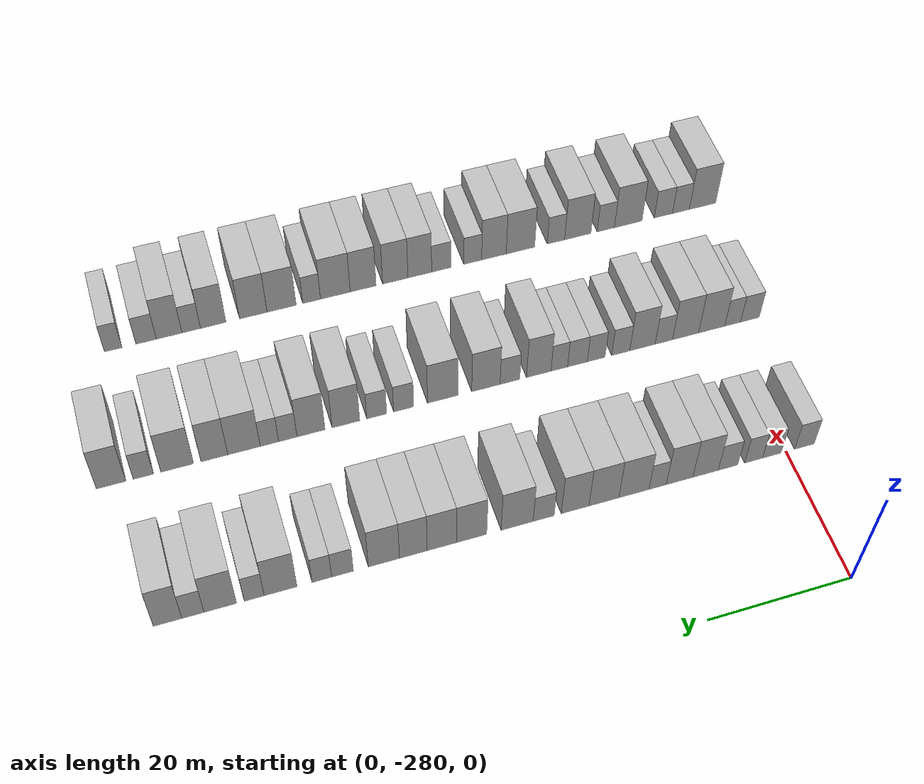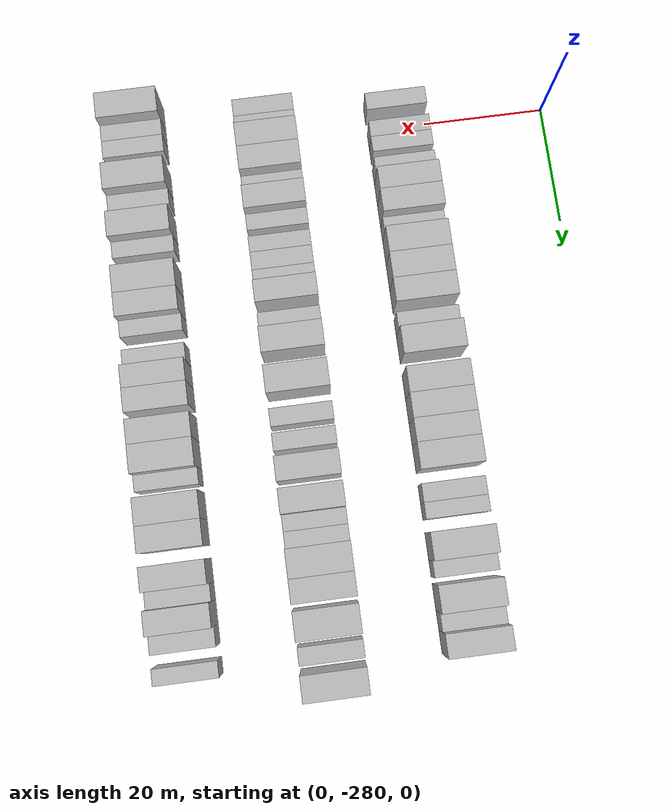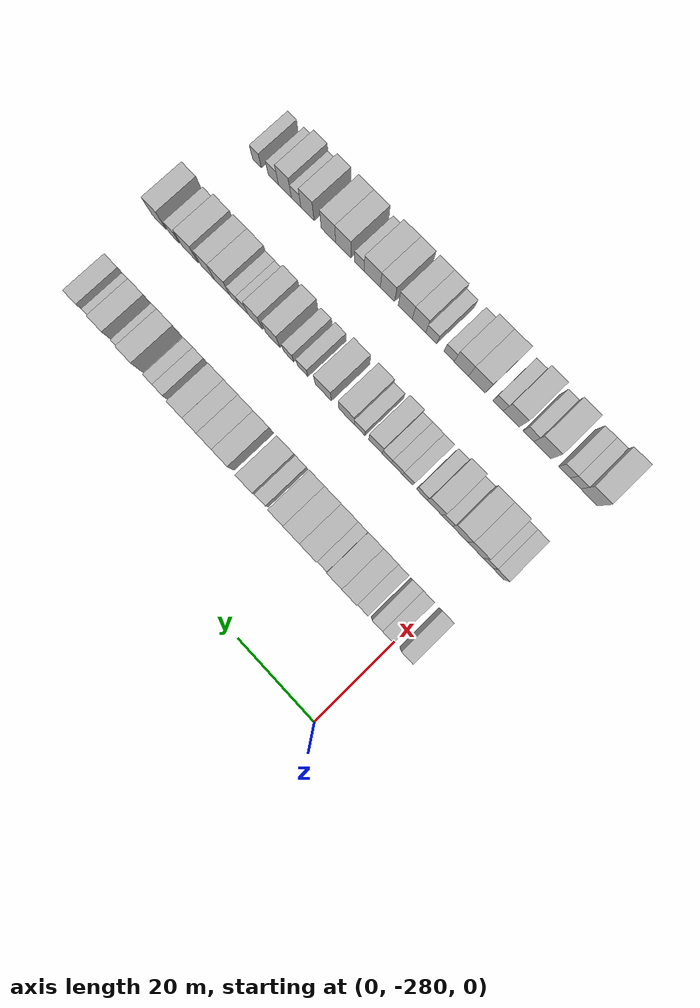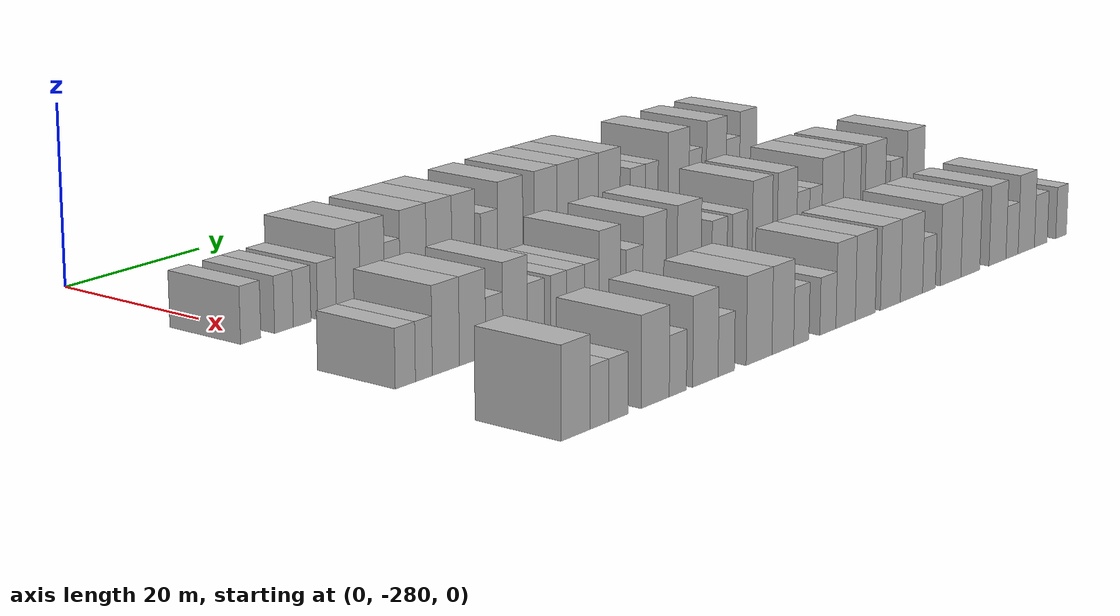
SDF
<sdf version="1.6">
 <world name="default">
  <model name="building_20">
   <static>1</static>
   <pose>25.0000 -282.6733 0 0.000000 0.000000 0.000000</pose>
   <link name="link">
    <pose>0 0 3.00 0 0 0</pose>
    <collision name="collision"><geometry><box><size>10.0000 2.9058 6.0000</size></box></geometry></collision>
    <visual name="visual">
     <cast_shadows>0</cast_shadows>
     <geometry><box><size>10.0000 2.9058 6.0000</size></box></geometry>
     <material>
      <script>
       <uri>model://HANNAS_wall/materials/scripts</uri>
       <uri>model://HANNAS_wall/materials/textures</uri>
       <name>vrc/HANNAS_wall</name>
      </script>
     </material>
    </visual>
   </link>
  </model>
  <model name="building_21">
   <static>1</static>
   <pose>25.0000 -277.8482 0 0.000000 0.000000 0.000000</pose>
   <link name="link">
    <pose>0 0 3.00 0 0 0</pose>
    <collision name="collision"><geometry><box><size>10.0000 2.7444 6.0000</size></box></geometry></collision>
    <visual name="visual">
     <cast_shadows>0</cast_shadows>
     <geometry><box><size>10.0000 2.7444 6.0000</size></box></geometry>
     <material>
      <script>
       <uri>model://HANNAS_wall/materials/scripts</uri>
       <uri>model://HANNAS_wall/materials/textures</uri>
       <name>vrc/HANNAS_wall</name>
      </script>
     </material>
    </visual>
   </link>
  </model>
  <model name="building_22">
   <static>1</static>
   <pose>25.0000 -275.1647 0 0.000000 0.000000 0.000000</pose>
   <link name="link">
    <pose>0 0 3.00 0 0 0</pose>
    <collision name="collision"><geometry><box><size>10.0000 2.6225 6.0000</size></box></geometry></collision>
    <visual name="visual">
     <cast_shadows>0</cast_shadows>
     <geometry><box><size>10.0000 2.6225 6.0000</size></box></geometry>
     <material>
      <script>
       <uri>model://HANNAS_wall/materials/scripts</uri>
       <uri>model://HANNAS_wall/materials/textures</uri>
       <name>vrc/HANNAS_wall</name>
      </script>
     </material>
    </visual>
   </link>
  </model>
  <model name="building_23">
   <static>1</static>
   <pose>25.0000 -271.4260 0 0.000000 0.000000 0.000000</pose>
   <link name="link">
    <pose>0 0 3.00 0 0 0</pose>
    <collision name="collision"><geometry><box><size>10.0000 2.8548 6.0000</size></box></geometry></collision>
    <visual name="visual">
     <cast_shadows>0</cast_shadows>
     <geometry><box><size>10.0000 2.8548 6.0000</size></box></geometry>
     <material>
      <script>
       <uri>model://HANNAS_wall/materials/scripts</uri>
       <uri>model://HANNAS_wall/materials/textures</uri>
       <name>vrc/HANNAS_wall</name>
      </script>
     </material>
    </visual>
   </link>
  </model>
  <model name="building_24">
   <static>1</static>
   <pose>25.0000 -268.1516 0 0.000000 0.000000 0.000000</pose>
   <link name="link">
    <pose>0 0 4.50 0 0 0</pose>
    <collision name="collision"><geometry><box><size>10.0000 3.6940 9.0000</size></box></geometry></collision>
    <visual name="visual">
     <cast_shadows>0</cast_shadows>
     <geometry><box><size>10.0000 3.6940 9.0000</size></box></geometry>
     <material>
      <script>
       <uri>model://HANNAS_wall/materials/scripts</uri>
       <uri>model://HANNAS_wall/materials/textures</uri>
       <name>vrc/HANNAS_wall</name>
      </script>
     </material>
    </visual>
   </link>
  </model>
  <model name="building_25">
   <static>1</static>
   <pose>25.0000 -264.3917 0 0.000000 0.000000 0.000000</pose>
   <link name="link">
    <pose>0 0 4.50 0 0 0</pose>
    <collision name="collision"><geometry><box><size>10.0000 3.8258 9.0000</size></box></geometry></collision>
    <visual name="visual">
     <cast_shadows>0</cast_shadows>
     <geometry><box><size>10.0000 3.8258 9.0000</size></box></geometry>
     <material>
      <script>
       <uri>model://HANNAS_wall/materials/scripts</uri>
       <uri>model://HANNAS_wall/materials/textures</uri>
       <name>vrc/HANNAS_wall</name>
      </script>
     </material>
    </visual>
   </link>
  </model>
  <model name="building_26">
   <static>1</static>
   <pose>25.0000 -261.2390 0 0.000000 0.000000 0.000000</pose>
   <link name="link">
    <pose>0 0 3.00 0 0 0</pose>
    <collision name="collision"><geometry><box><size>10.0000 2.4795 6.0000</size></box></geometry></collision>
    <visual name="visual">
     <cast_shadows>0</cast_shadows>
     <geometry><box><size>10.0000 2.4795 6.0000</size></box></geometry>
     <material>
      <script>
       <uri>model://HANNAS_wall/materials/scripts</uri>
       <uri>model://HANNAS_wall/materials/textures</uri>
       <name>vrc/HANNAS_wall</name>
      </script>
     </material>
    </visual>
   </link>
  </model>
  <model name="building_27">
   <static>1</static>
   <pose>25.0000 -257.8551 0 0.000000 0.000000 0.000000</pose>
   <link name="link">
    <pose>0 0 4.50 0 0 0</pose>
    <collision name="collision"><geometry><box><size>10.0000 4.2885 9.0000</size></box></geometry></collision>
    <visual name="visual">
     <cast_shadows>0</cast_shadows>
     <geometry><box><size>10.0000 4.2885 9.0000</size></box></geometry>
     <material>
      <script>
       <uri>model://HANNAS_wall/materials/scripts</uri>
       <uri>model://HANNAS_wall/materials/textures</uri>
       <name>vrc/HANNAS_wall</name>
      </script>
     </material>
    </visual>
   </link>
  </model>
  <model name="building_28">
   <static>1</static>
   <pose>25.0000 -253.5966 0 0.000000 0.000000 0.000000</pose>
   <link name="link">
    <pose>0 0 4.50 0 0 0</pose>
    <collision name="collision"><geometry><box><size>10.0000 4.2284 9.0000</size></box></geometry></collision>
    <visual name="visual">
     <cast_shadows>0</cast_shadows>
     <geometry><box><size>10.0000 4.2284 9.0000</size></box></geometry>
     <material>
      <script>
       <uri>model://HANNAS_wall/materials/scripts</uri>
       <uri>model://HANNAS_wall/materials/textures</uri>
       <name>vrc/HANNAS_wall</name>
      </script>
     </material>
    </visual>
   </link>
  </model>
  <model name="building_29">
   <static>1</static>
   <pose>25.0000 -249.5386 0 0.000000 0.000000 0.000000</pose>
   <link name="link">
    <pose>0 0 4.50 0 0 0</pose>
    <collision name="collision"><geometry><box><size>10.0000 3.8877 9.0000</size></box></geometry></collision>
    <visual name="visual">
     <cast_shadows>0</cast_shadows>
     <geometry><box><size>10.0000 3.8877 9.0000</size></box></geometry>
     <material>
      <script>
       <uri>model://HANNAS_wall/materials/scripts</uri>
       <uri>model://HANNAS_wall/materials/textures</uri>
       <name>vrc/HANNAS_wall</name>
      </script>
     </material>
    </visual>
   </link>
  </model>
  <model name="building_30">
   <static>1</static>
   <pose>25.0000 -245.1325 0 0.000000 0.000000 0.000000</pose>
   <link name="link">
    <pose>0 0 3.00 0 0 0</pose>
    <collision name="collision"><geometry><box><size>10.0000 2.9245 6.0000</size></box></geometry></collision>
    <visual name="visual">
     <cast_shadows>0</cast_shadows>
     <geometry><box><size>10.0000 2.9245 6.0000</size></box></geometry>
     <material>
      <script>
       <uri>model://HANNAS_wall/materials/scripts</uri>
       <uri>model://HANNAS_wall/materials/textures</uri>
       <name>vrc/HANNAS_wall</name>
      </script>
     </material>
    </visual>
   </link>
  </model>
  <model name="building_31">
   <static>1</static>
   <pose>25.0000 -241.4509 0 0.000000 0.000000 0.000000</pose>
   <link name="link">
    <pose>0 0 4.50 0 0 0</pose>
    <collision name="collision"><geometry><box><size>10.0000 4.4386 9.0000</size></box></geometry></collision>
    <visual name="visual">
     <cast_shadows>0</cast_shadows>
     <geometry><box><size>10.0000 4.4386 9.0000</size></box></geometry>
     <material>
      <script>
       <uri>model://HANNAS_wall/materials/scripts</uri>
       <uri>model://HANNAS_wall/materials/textures</uri>
       <name>vrc/HANNAS_wall</name>
      </script>
     </material>
    </visual>
   </link>
  </model>
  <model name="building_32">
   <static>1</static>
   <pose>25.0000 -235.1560 0 0.000000 0.000000 0.000000</pose>
   <link name="link">
    <pose>0 0 4.50 0 0 0</pose>
    <collision name="collision"><geometry><box><size>10.0000 4.1512 9.0000</size></box></geometry></collision>
    <visual name="visual">
     <cast_shadows>0</cast_shadows>
     <geometry><box><size>10.0000 4.1512 9.0000</size></box></geometry>
     <material>
      <script>
       <uri>model://HANNAS_wall/materials/scripts</uri>
       <uri>model://HANNAS_wall/materials/textures</uri>
       <name>vrc/HANNAS_wall</name>
      </script>
     </material>
    </visual>
   </link>
  </model>
  <model name="building_33">
   <static>1</static>
   <pose>25.0000 -231.0909 0 0.000000 0.000000 0.000000</pose>
   <link name="link">
    <pose>0 0 4.50 0 0 0</pose>
    <collision name="collision"><geometry><box><size>10.0000 3.9792 9.0000</size></box></geometry></collision>
    <visual name="visual">
     <cast_shadows>0</cast_shadows>
     <geometry><box><size>10.0000 3.9792 9.0000</size></box></geometry>
     <material>
      <script>
       <uri>model://HANNAS_wall/materials/scripts</uri>
       <uri>model://HANNAS_wall/materials/textures</uri>
       <name>vrc/HANNAS_wall</name>
      </script>
     </material>
    </visual>
   </link>
  </model>
  <model name="building_34">
   <static>1</static>
   <pose>25.0000 -227.2338 0 0.000000 0.000000 0.000000</pose>
   <link name="link">
    <pose>0 0 4.50 0 0 0</pose>
    <collision name="collision"><geometry><box><size>10.0000 3.7350 9.0000</size></box></geometry></collision>
    <visual name="visual">
     <cast_shadows>0</cast_shadows>
     <geometry><box><size>10.0000 3.7350 9.0000</size></box></geometry>
     <material>
      <script>
       <uri>model://HANNAS_wall/materials/scripts</uri>
       <uri>model://HANNAS_wall/materials/textures</uri>
       <name>vrc/HANNAS_wall</name>
      </script>
     </material>
    </visual>
   </link>
  </model>
  <model name="building_35">
   <static>1</static>
   <pose>25.0000 -223.2722 0 0.000000 0.000000 0.000000</pose>
   <link name="link">
    <pose>0 0 4.50 0 0 0</pose>
    <collision name="collision"><geometry><box><size>10.0000 4.1880 9.0000</size></box></geometry></collision>
    <visual name="visual">
     <cast_shadows>0</cast_shadows>
     <geometry><box><size>10.0000 4.1880 9.0000</size></box></geometry>
     <material>
      <script>
       <uri>model://HANNAS_wall/materials/scripts</uri>
       <uri>model://HANNAS_wall/materials/textures</uri>
       <name>vrc/HANNAS_wall</name>
      </script>
     </material>
    </visual>
   </link>
  </model>
  <model name="building_36">
   <static>1</static>
   <pose>25.0000 -217.7304 0 0.000000 0.000000 0.000000</pose>
   <link name="link">
    <pose>0 0 3.00 0 0 0</pose>
    <collision name="collision"><geometry><box><size>10.0000 2.8956 6.0000</size></box></geometry></collision>
    <visual name="visual">
     <cast_shadows>0</cast_shadows>
     <geometry><box><size>10.0000 2.8956 6.0000</size></box></geometry>
     <material>
      <script>
       <uri>model://HANNAS_wall/materials/scripts</uri>
       <uri>model://HANNAS_wall/materials/textures</uri>
       <name>vrc/HANNAS_wall</name>
      </script>
     </material>
    </visual>
   </link>
  </model>
  <model name="building_37">
   <static>1</static>
   <pose>25.0000 -214.9912 0 0.000000 0.000000 0.000000</pose>
   <link name="link">
    <pose>0 0 3.00 0 0 0</pose>
    <collision name="collision"><geometry><box><size>10.0000 2.5828 6.0000</size></box></geometry></collision>
    <visual name="visual">
     <cast_shadows>0</cast_shadows>
     <geometry><box><size>10.0000 2.5828 6.0000</size></box></geometry>
     <material>
      <script>
       <uri>model://HANNAS_wall/materials/scripts</uri>
       <uri>model://HANNAS_wall/materials/textures</uri>
       <name>vrc/HANNAS_wall</name>
      </script>
     </material>
    </visual>
   </link>
  </model>
  <model name="building_38">
   <static>1</static>
   <pose>25.0000 -209.5487 0 0.000000 0.000000 0.000000</pose>
   <link name="link">
    <pose>0 0 4.50 0 0 0</pose>
    <collision name="collision"><geometry><box><size>10.0000 4.3022 9.0000</size></box></geometry></collision>
    <visual name="visual">
     <cast_shadows>0</cast_shadows>
     <geometry><box><size>10.0000 4.3022 9.0000</size></box></geometry>
     <material>
      <script>
       <uri>model://HANNAS_wall/materials/scripts</uri>
       <uri>model://HANNAS_wall/materials/textures</uri>
       <name>vrc/HANNAS_wall</name>
      </script>
     </material>
    </visual>
   </link>
  </model>
  <model name="building_39">
   <static>1</static>
   <pose>25.0000 -206.1032 0 0.000000 0.000000 0.000000</pose>
   <link name="link">
    <pose>0 0 3.00 0 0 0</pose>
    <collision name="collision"><geometry><box><size>10.0000 2.5889 6.0000</size></box></geometry></collision>
    <visual name="visual">
     <cast_shadows>0</cast_shadows>
     <geometry><box><size>10.0000 2.5889 6.0000</size></box></geometry>
     <material>
      <script>
       <uri>model://HANNAS_wall/materials/scripts</uri>
       <uri>model://HANNAS_wall/materials/textures</uri>
       <name>vrc/HANNAS_wall</name>
      </script>
     </material>
    </visual>
   </link>
  </model>
  <model name="building_40">
   <static>1</static>
   <pose>25.0000 -201.7070 0 0.000000 0.000000 0.000000</pose>
   <link name="link">
    <pose>0 0 4.50 0 0 0</pose>
    <collision name="collision"><geometry><box><size>10.0000 4.2035 9.0000</size></box></geometry></collision>
    <visual name="visual">
     <cast_shadows>0</cast_shadows>
     <geometry><box><size>10.0000 4.2035 9.0000</size></box></geometry>
     <material>
      <script>
       <uri>model://HANNAS_wall/materials/scripts</uri>
       <uri>model://HANNAS_wall/materials/textures</uri>
       <name>vrc/HANNAS_wall</name>
      </script>
     </material>
    </visual>
   </link>
  </model>
  <model name="building_41">
   <static>1</static>
   <pose>25.0000 -198.1767 0 0.000000 0.000000 0.000000</pose>
   <link name="link">
    <pose>0 0 3.00 0 0 0</pose>
    <collision name="collision"><geometry><box><size>10.0000 2.8569 6.0000</size></box></geometry></collision>
    <visual name="visual">
     <cast_shadows>0</cast_shadows>
     <geometry><box><size>10.0000 2.8569 6.0000</size></box></geometry>
     <material>
      <script>
       <uri>model://HANNAS_wall/materials/scripts</uri>
       <uri>model://HANNAS_wall/materials/textures</uri>
       <name>vrc/HANNAS_wall</name>
      </script>
     </material>
    </visual>
   </link>
  </model>
  <model name="building_42">
   <static>1</static>
   <pose>25.0000 -194.9257 0 0.000000 0.000000 0.000000</pose>
   <link name="link">
    <pose>0 0 4.50 0 0 0</pose>
    <collision name="collision"><geometry><box><size>10.0000 3.6452 9.0000</size></box></geometry></collision>
    <visual name="visual">
     <cast_shadows>0</cast_shadows>
     <geometry><box><size>10.0000 3.6452 9.0000</size></box></geometry>
     <material>
      <script>
       <uri>model://HANNAS_wall/materials/scripts</uri>
       <uri>model://HANNAS_wall/materials/textures</uri>
       <name>vrc/HANNAS_wall</name>
      </script>
     </material>
    </visual>
   </link>
  </model>
  <model name="building_211">
   <static>1</static>
   <pose>47.0000 -284.3472 0 0.000000 0.000000 0.000000</pose>
   <link name="link">
    <pose>0 0 3.00 0 0 0</pose>
    <collision name="collision"><geometry><box><size>10.0000 2.9237 6.0000</size></box></geometry></collision>
    <visual name="visual">
     <cast_shadows>0</cast_shadows>
     <geometry><box><size>10.0000 2.9237 6.0000</size></box></geometry>
     <material>
      <script>
       <uri>model://HANNAS_wall/materials/scripts</uri>
       <uri>model://HANNAS_wall/materials/textures</uri>
       <name>vrc/HANNAS_wall</name>
      </script>
     </material>
    </visual>
   </link>
  </model>
  <model name="building_212">
   <static>1</static>
   <pose>47.0000 -281.6513 0 0.000000 0.000000 0.000000</pose>
   <link name="link">
    <pose>0 0 3.00 0 0 0</pose>
    <collision name="collision"><geometry><box><size>10.0000 2.4682 6.0000</size></box></geometry></collision>
    <visual name="visual">
     <cast_shadows>0</cast_shadows>
     <geometry><box><size>10.0000 2.4682 6.0000</size></box></geometry>
     <material>
      <script>
       <uri>model://HANNAS_wall/materials/scripts</uri>
       <uri>model://HANNAS_wall/materials/textures</uri>
       <name>vrc/HANNAS_wall</name>
      </script>
     </material>
    </visual>
   </link>
  </model>
  <model name="building_213">
   <static>1</static>
   <pose>47.0000 -278.3862 0 0.000000 0.000000 0.000000</pose>
   <link name="link">
    <pose>0 0 4.50 0 0 0</pose>
    <collision name="collision"><geometry><box><size>10.0000 4.0619 9.0000</size></box></geometry></collision>
    <visual name="visual">
     <cast_shadows>0</cast_shadows>
     <geometry><box><size>10.0000 4.0619 9.0000</size></box></geometry>
     <material>
      <script>
       <uri>model://HANNAS_wall/materials/scripts</uri>
       <uri>model://HANNAS_wall/materials/textures</uri>
       <name>vrc/HANNAS_wall</name>
      </script>
     </material>
    </visual>
   </link>
  </model>
  <model name="building_214">
   <static>1</static>
   <pose>47.0000 -274.3533 0 0.000000 0.000000 0.000000</pose>
   <link name="link">
    <pose>0 0 4.50 0 0 0</pose>
    <collision name="collision"><geometry><box><size>10.0000 4.0040 9.0000</size></box></geometry></collision>
    <visual name="visual">
     <cast_shadows>0</cast_shadows>
     <geometry><box><size>10.0000 4.0040 9.0000</size></box></geometry>
     <material>
      <script>
       <uri>model://HANNAS_wall/materials/scripts</uri>
       <uri>model://HANNAS_wall/materials/textures</uri>
       <name>vrc/HANNAS_wall</name>
      </script>
     </material>
    </visual>
   </link>
  </model>
  <model name="building_215">
   <static>1</static>
   <pose>47.0000 -271.0222 0 0.000000 0.000000 0.000000</pose>
   <link name="link">
    <pose>0 0 3.00 0 0 0</pose>
    <collision name="collision"><geometry><box><size>10.0000 2.6580 6.0000</size></box></geometry></collision>
    <visual name="visual">
     <cast_shadows>0</cast_shadows>
     <geometry><box><size>10.0000 2.6580 6.0000</size></box></geometry>
     <material>
      <script>
       <uri>model://HANNAS_wall/materials/scripts</uri>
       <uri>model://HANNAS_wall/materials/textures</uri>
       <name>vrc/HANNAS_wall</name>
      </script>
     </material>
    </visual>
   </link>
  </model>
  <model name="building_216">
   <static>1</static>
   <pose>47.0000 -267.7546 0 0.000000 0.000000 0.000000</pose>
   <link name="link">
    <pose>0 0 4.50 0 0 0</pose>
    <collision name="collision"><geometry><box><size>10.0000 3.8773 9.0000</size></box></geometry></collision>
    <visual name="visual">
     <cast_shadows>0</cast_shadows>
     <geometry><box><size>10.0000 3.8773 9.0000</size></box></geometry>
     <material>
      <script>
       <uri>model://HANNAS_wall/materials/scripts</uri>
       <uri>model://HANNAS_wall/materials/textures</uri>
       <name>vrc/HANNAS_wall</name>
      </script>
     </material>
    </visual>
   </link>
  </model>
  <model name="building_217">
   <static>1</static>
   <pose>47.0000 -264.4437 0 0.000000 0.000000 0.000000</pose>
   <link name="link">
    <pose>0 0 3.00 0 0 0</pose>
    <collision name="collision"><geometry><box><size>10.0000 2.7444 6.0000</size></box></geometry></collision>
    <visual name="visual">
     <cast_shadows>0</cast_shadows>
     <geometry><box><size>10.0000 2.7444 6.0000</size></box></geometry>
     <material>
      <script>
       <uri>model://HANNAS_wall/materials/scripts</uri>
       <uri>model://HANNAS_wall/materials/textures</uri>
       <name>vrc/HANNAS_wall</name>
      </script>
     </material>
    </visual>
   </link>
  </model>
  <model name="building_218">
   <static>1</static>
   <pose>47.0000 -260.7362 0 0.000000 0.000000 0.000000</pose>
   <link name="link">
    <pose>0 0 3.00 0 0 0</pose>
    <collision name="collision"><geometry><box><size>10.0000 2.6706 6.0000</size></box></geometry></collision>
    <visual name="visual">
     <cast_shadows>0</cast_shadows>
     <geometry><box><size>10.0000 2.6706 6.0000</size></box></geometry>
     <material>
      <script>
       <uri>model://HANNAS_wall/materials/scripts</uri>
       <uri>model://HANNAS_wall/materials/textures</uri>
       <name>vrc/HANNAS_wall</name>
      </script>
     </material>
    </visual>
   </link>
  </model>
  <model name="building_219">
   <static>1</static>
   <pose>47.0000 -257.9116 0 0.000000 0.000000 0.000000</pose>
   <link name="link">
    <pose>0 0 3.00 0 0 0</pose>
    <collision name="collision"><geometry><box><size>10.0000 2.9785 6.0000</size></box></geometry></collision>
    <visual name="visual">
     <cast_shadows>0</cast_shadows>
     <geometry><box><size>10.0000 2.9785 6.0000</size></box></geometry>
     <material>
      <script>
       <uri>model://HANNAS_wall/materials/scripts</uri>
       <uri>model://HANNAS_wall/materials/textures</uri>
       <name>vrc/HANNAS_wall</name>
      </script>
     </material>
    </visual>
   </link>
  </model>
  <model name="building_220">
   <static>1</static>
   <pose>47.0000 -255.1877 0 0.000000 0.000000 0.000000</pose>
   <link name="link">
    <pose>0 0 3.00 0 0 0</pose>
    <collision name="collision"><geometry><box><size>10.0000 2.4693 6.0000</size></box></geometry></collision>
    <visual name="visual">
     <cast_shadows>0</cast_shadows>
     <geometry><box><size>10.0000 2.4693 6.0000</size></box></geometry>
     <material>
      <script>
       <uri>model://HANNAS_wall/materials/scripts</uri>
       <uri>model://HANNAS_wall/materials/textures</uri>
       <name>vrc/HANNAS_wall</name>
      </script>
     </material>
    </visual>
   </link>
  </model>
  <model name="building_221">
   <static>1</static>
   <pose>47.0000 -252.1338 0 0.000000 0.000000 0.000000</pose>
   <link name="link">
    <pose>0 0 4.50 0 0 0</pose>
    <collision name="collision"><geometry><box><size>10.0000 3.6384 9.0000</size></box></geometry></collision>
    <visual name="visual">
     <cast_shadows>0</cast_shadows>
     <geometry><box><size>10.0000 3.6384 9.0000</size></box></geometry>
     <material>
      <script>
       <uri>model://HANNAS_wall/materials/scripts</uri>
       <uri>model://HANNAS_wall/materials/textures</uri>
       <name>vrc/HANNAS_wall</name>
      </script>
     </material>
    </visual>
   </link>
  </model>
  <model name="building_222">
   <static>1</static>
   <pose>47.0000 -247.8571 0 0.000000 0.000000 0.000000</pose>
   <link name="link">
    <pose>0 0 3.00 0 0 0</pose>
    <collision name="collision"><geometry><box><size>10.0000 2.9151 6.0000</size></box></geometry></collision>
    <visual name="visual">
     <cast_shadows>0</cast_shadows>
     <geometry><box><size>10.0000 2.9151 6.0000</size></box></geometry>
     <material>
      <script>
       <uri>model://HANNAS_wall/materials/scripts</uri>
       <uri>model://HANNAS_wall/materials/textures</uri>
       <name>vrc/HANNAS_wall</name>
      </script>
     </material>
    </visual>
   </link>
  </model>
  <model name="building_223">
   <static>1</static>
   <pose>47.0000 -244.3204 0 0.000000 0.000000 0.000000</pose>
   <link name="link">
    <pose>0 0 4.50 0 0 0</pose>
    <collision name="collision"><geometry><box><size>10.0000 4.1583 9.0000</size></box></geometry></collision>
    <visual name="visual">
     <cast_shadows>0</cast_shadows>
     <geometry><box><size>10.0000 4.1583 9.0000</size></box></geometry>
     <material>
      <script>
       <uri>model://HANNAS_wall/materials/scripts</uri>
       <uri>model://HANNAS_wall/materials/textures</uri>
       <name>vrc/HANNAS_wall</name>
      </script>
     </material>
    </visual>
   </link>
  </model>
  <model name="building_224">
   <static>1</static>
   <pose>47.0000 -238.0239 0 0.000000 0.000000 0.000000</pose>
   <link name="link">
    <pose>0 0 4.50 0 0 0</pose>
    <collision name="collision"><geometry><box><size>10.0000 4.4346 9.0000</size></box></geometry></collision>
    <visual name="visual">
     <cast_shadows>0</cast_shadows>
     <geometry><box><size>10.0000 4.4346 9.0000</size></box></geometry>
     <material>
      <script>
       <uri>model://HANNAS_wall/materials/scripts</uri>
       <uri>model://HANNAS_wall/materials/textures</uri>
       <name>vrc/HANNAS_wall</name>
      </script>
     </material>
    </visual>
   </link>
  </model>
  <model name="building_225">
   <static>1</static>
   <pose>47.0000 -232.3604 0 0.000000 0.000000 0.000000</pose>
   <link name="link">
    <pose>0 0 3.00 0 0 0</pose>
    <collision name="collision"><geometry><box><size>10.0000 2.8925 6.0000</size></box></geometry></collision>
    <visual name="visual">
     <cast_shadows>0</cast_shadows>
     <geometry><box><size>10.0000 2.8925 6.0000</size></box></geometry>
     <material>
      <script>
       <uri>model://HANNAS_wall/materials/scripts</uri>
       <uri>model://HANNAS_wall/materials/textures</uri>
       <name>vrc/HANNAS_wall</name>
      </script>
     </material>
    </visual>
   </link>
  </model>
  <model name="building_226">
   <static>1</static>
   <pose>47.0000 -228.4913 0 0.000000 0.000000 0.000000</pose>
   <link name="link">
    <pose>0 0 3.00 0 0 0</pose>
    <collision name="collision"><geometry><box><size>10.0000 2.8457 6.0000</size></box></geometry></collision>
    <visual name="visual">
     <cast_shadows>0</cast_shadows>
     <geometry><box><size>10.0000 2.8457 6.0000</size></box></geometry>
     <material>
      <script>
       <uri>model://HANNAS_wall/materials/scripts</uri>
       <uri>model://HANNAS_wall/materials/textures</uri>
       <name>vrc/HANNAS_wall</name>
      </script>
     </material>
    </visual>
   </link>
  </model>
  <model name="building_227">
   <static>1</static>
   <pose>47.0000 -224.1055 0 0.000000 0.000000 0.000000</pose>
   <link name="link">
    <pose>0 0 4.50 0 0 0</pose>
    <collision name="collision"><geometry><box><size>10.0000 3.9258 9.0000</size></box></geometry></collision>
    <visual name="visual">
     <cast_shadows>0</cast_shadows>
     <geometry><box><size>10.0000 3.9258 9.0000</size></box></geometry>
     <material>
      <script>
       <uri>model://HANNAS_wall/materials/scripts</uri>
       <uri>model://HANNAS_wall/materials/textures</uri>
       <name>vrc/HANNAS_wall</name>
      </script>
     </material>
    </visual>
   </link>
  </model>
  <model name="building_228">
   <static>1</static>
   <pose>47.0000 -219.1646 0 0.000000 0.000000 0.000000</pose>
   <link name="link">
    <pose>0 0 4.50 0 0 0</pose>
    <collision name="collision"><geometry><box><size>10.0000 3.9560 9.0000</size></box></geometry></collision>
    <visual name="visual">
     <cast_shadows>0</cast_shadows>
     <geometry><box><size>10.0000 3.9560 9.0000</size></box></geometry>
     <material>
      <script>
       <uri>model://HANNAS_wall/materials/scripts</uri>
       <uri>model://HANNAS_wall/materials/textures</uri>
       <name>vrc/HANNAS_wall</name>
      </script>
     </material>
    </visual>
   </link>
  </model>
  <model name="building_229">
   <static>1</static>
   <pose>47.0000 -215.8999 0 0.000000 0.000000 0.000000</pose>
   <link name="link">
    <pose>0 0 3.00 0 0 0</pose>
    <collision name="collision"><geometry><box><size>10.0000 2.5735 6.0000</size></box></geometry></collision>
    <visual name="visual">
     <cast_shadows>0</cast_shadows>
     <geometry><box><size>10.0000 2.5735 6.0000</size></box></geometry>
     <material>
      <script>
       <uri>model://HANNAS_wall/materials/scripts</uri>
       <uri>model://HANNAS_wall/materials/textures</uri>
       <name>vrc/HANNAS_wall</name>
      </script>
     </material>
    </visual>
   </link>
  </model>
  <model name="building_230">
   <static>1</static>
   <pose>47.0000 -213.3289 0 0.000000 0.000000 0.000000</pose>
   <link name="link">
    <pose>0 0 3.00 0 0 0</pose>
    <collision name="collision"><geometry><box><size>10.0000 2.5684 6.0000</size></box></geometry></collision>
    <visual name="visual">
     <cast_shadows>0</cast_shadows>
     <geometry><box><size>10.0000 2.5684 6.0000</size></box></geometry>
     <material>
      <script>
       <uri>model://HANNAS_wall/materials/scripts</uri>
       <uri>model://HANNAS_wall/materials/textures</uri>
       <name>vrc/HANNAS_wall</name>
      </script>
     </material>
    </visual>
   </link>
  </model>
  <model name="building_231">
   <static>1</static>
   <pose>47.0000 -209.7952 0 0.000000 0.000000 0.000000</pose>
   <link name="link">
    <pose>0 0 4.50 0 0 0</pose>
    <collision name="collision"><geometry><box><size>10.0000 4.4989 9.0000</size></box></geometry></collision>
    <visual name="visual">
     <cast_shadows>0</cast_shadows>
     <geometry><box><size>10.0000 4.4989 9.0000</size></box></geometry>
     <material>
      <script>
       <uri>model://HANNAS_wall/materials/scripts</uri>
       <uri>model://HANNAS_wall/materials/textures</uri>
       <name>vrc/HANNAS_wall</name>
      </script>
     </material>
    </visual>
   </link>
  </model>
  <model name="building_232">
   <static>1</static>
   <pose>47.0000 -205.6938 0 0.000000 0.000000 0.000000</pose>
   <link name="link">
    <pose>0 0 4.50 0 0 0</pose>
    <collision name="collision"><geometry><box><size>10.0000 3.7041 9.0000</size></box></geometry></collision>
    <visual name="visual">
     <cast_shadows>0</cast_shadows>
     <geometry><box><size>10.0000 3.7041 9.0000</size></box></geometry>
     <material>
      <script>
       <uri>model://HANNAS_wall/materials/scripts</uri>
       <uri>model://HANNAS_wall/materials/textures</uri>
       <name>vrc/HANNAS_wall</name>
      </script>
     </material>
    </visual>
   </link>
  </model>
  <model name="building_233">
   <static>1</static>
   <pose>47.0000 -200.6023 0 0.000000 0.000000 0.000000</pose>
   <link name="link">
    <pose>0 0 4.50 0 0 0</pose>
    <collision name="collision"><geometry><box><size>10.0000 4.4789 9.0000</size></box></geometry></collision>
    <visual name="visual">
     <cast_shadows>0</cast_shadows>
     <geometry><box><size>10.0000 4.4789 9.0000</size></box></geometry>
     <material>
      <script>
       <uri>model://HANNAS_wall/materials/scripts</uri>
       <uri>model://HANNAS_wall/materials/textures</uri>
       <name>vrc/HANNAS_wall</name>
      </script>
     </material>
    </visual>
   </link>
  </model>
  <model name="building_234">
   <static>1</static>
   <pose>47.0000 -195.9925 0 0.000000 0.000000 0.000000</pose>
   <link name="link">
    <pose>0 0 3.00 0 0 0</pose>
    <collision name="collision"><geometry><box><size>10.0000 2.7408 6.0000</size></box></geometry></collision>
    <visual name="visual">
     <cast_shadows>0</cast_shadows>
     <geometry><box><size>10.0000 2.7408 6.0000</size></box></geometry>
     <material>
      <script>
       <uri>model://HANNAS_wall/materials/scripts</uri>
       <uri>model://HANNAS_wall/materials/textures</uri>
       <name>vrc/HANNAS_wall</name>
      </script>
     </material>
    </visual>
   </link>
  </model>
  <model name="building_235">
   <static>1</static>
   <pose>47.0000 -191.6322 0 0.000000 0.000000 0.000000</pose>
   <link name="link">
    <pose>0 0 4.50 0 0 0</pose>
    <collision name="collision"><geometry><box><size>10.0000 3.9798 9.0000</size></box></geometry></collision>
    <visual name="visual">
     <cast_shadows>0</cast_shadows>
     <geometry><box><size>10.0000 3.9798 9.0000</size></box></geometry>
     <material>
      <script>
       <uri>model://HANNAS_wall/materials/scripts</uri>
       <uri>model://HANNAS_wall/materials/textures</uri>
       <name>vrc/HANNAS_wall</name>
      </script>
     </material>
    </visual>
   </link>
  </model>
  <model name="building_402">
   <static>1</static>
   <pose>69.0000 -286.2253 0 0.000000 0.000000 0.000000</pose>
   <link name="link">
    <pose>0 0 4.50 0 0 0</pose>
    <collision name="collision"><geometry><box><size>10.0000 4.3257 9.0000</size></box></geometry></collision>
    <visual name="visual">
     <cast_shadows>0</cast_shadows>
     <geometry><box><size>10.0000 4.3257 9.0000</size></box></geometry>
     <material>
      <script>
       <uri>model://HANNAS_wall/materials/scripts</uri>
       <uri>model://HANNAS_wall/materials/textures</uri>
       <name>vrc/HANNAS_wall</name>
      </script>
     </material>
    </visual>
   </link>
  </model>
  <model name="building_403">
   <static>1</static>
   <pose>69.0000 -282.6853 0 0.000000 0.000000 0.000000</pose>
   <link name="link">
    <pose>0 0 3.00 0 0 0</pose>
    <collision name="collision"><geometry><box><size>10.0000 2.7541 6.0000</size></box></geometry></collision>
    <visual name="visual">
     <cast_shadows>0</cast_shadows>
     <geometry><box><size>10.0000 2.7541 6.0000</size></box></geometry>
     <material>
      <script>
       <uri>model://HANNAS_wall/materials/scripts</uri>
       <uri>model://HANNAS_wall/materials/textures</uri>
       <name>vrc/HANNAS_wall</name>
      </script>
     </material>
    </visual>
   </link>
  </model>
  <model name="building_404">
   <static>1</static>
   <pose>69.0000 -279.8288 0 0.000000 0.000000 0.000000</pose>
   <link name="link">
    <pose>0 0 3.00 0 0 0</pose>
    <collision name="collision"><geometry><box><size>10.0000 2.9590 6.0000</size></box></geometry></collision>
    <visual name="visual">
     <cast_shadows>0</cast_shadows>
     <geometry><box><size>10.0000 2.9590 6.0000</size></box></geometry>
     <material>
      <script>
       <uri>model://HANNAS_wall/materials/scripts</uri>
       <uri>model://HANNAS_wall/materials/textures</uri>
       <name>vrc/HANNAS_wall</name>
      </script>
     </material>
    </visual>
   </link>
  </model>
  <model name="building_405">
   <static>1</static>
   <pose>69.0000 -274.1212 0 0.000000 0.000000 0.000000</pose>
   <link name="link">
    <pose>0 0 4.50 0 0 0</pose>
    <collision name="collision"><geometry><box><size>10.0000 4.4562 9.0000</size></box></geometry></collision>
    <visual name="visual">
     <cast_shadows>0</cast_shadows>
     <geometry><box><size>10.0000 4.4562 9.0000</size></box></geometry>
     <material>
      <script>
       <uri>model://HANNAS_wall/materials/scripts</uri>
       <uri>model://HANNAS_wall/materials/textures</uri>
       <name>vrc/HANNAS_wall</name>
      </script>
     </material>
    </visual>
   </link>
  </model>
  <model name="building_406">
   <static>1</static>
   <pose>69.0000 -270.5060 0 0.000000 0.000000 0.000000</pose>
   <link name="link">
    <pose>0 0 3.00 0 0 0</pose>
    <collision name="collision"><geometry><box><size>10.0000 2.7742 6.0000</size></box></geometry></collision>
    <visual name="visual">
     <cast_shadows>0</cast_shadows>
     <geometry><box><size>10.0000 2.7742 6.0000</size></box></geometry>
     <material>
      <script>
       <uri>model://HANNAS_wall/materials/scripts</uri>
       <uri>model://HANNAS_wall/materials/textures</uri>
       <name>vrc/HANNAS_wall</name>
      </script>
     </material>
    </visual>
   </link>
  </model>
  <model name="building_407">
   <static>1</static>
   <pose>69.0000 -266.0202 0 0.000000 0.000000 0.000000</pose>
   <link name="link">
    <pose>0 0 4.50 0 0 0</pose>
    <collision name="collision"><geometry><box><size>10.0000 4.1973 9.0000</size></box></geometry></collision>
    <visual name="visual">
     <cast_shadows>0</cast_shadows>
     <geometry><box><size>10.0000 4.1973 9.0000</size></box></geometry>
     <material>
      <script>
       <uri>model://HANNAS_wall/materials/scripts</uri>
       <uri>model://HANNAS_wall/materials/textures</uri>
       <name>vrc/HANNAS_wall</name>
      </script>
     </material>
    </visual>
   </link>
  </model>
  <model name="building_408">
   <static>1</static>
   <pose>69.0000 -262.5447 0 0.000000 0.000000 0.000000</pose>
   <link name="link">
    <pose>0 0 3.00 0 0 0</pose>
    <collision name="collision"><geometry><box><size>10.0000 2.7537 6.0000</size></box></geometry></collision>
    <visual name="visual">
     <cast_shadows>0</cast_shadows>
     <geometry><box><size>10.0000 2.7537 6.0000</size></box></geometry>
     <material>
      <script>
       <uri>model://HANNAS_wall/materials/scripts</uri>
       <uri>model://HANNAS_wall/materials/textures</uri>
       <name>vrc/HANNAS_wall</name>
      </script>
     </material>
    </visual>
   </link>
  </model>
  <model name="building_409">
   <static>1</static>
   <pose>69.0000 -256.9286 0 0.000000 0.000000 0.000000</pose>
   <link name="link">
    <pose>0 0 4.50 0 0 0</pose>
    <collision name="collision"><geometry><box><size>10.0000 4.4786 9.0000</size></box></geometry></collision>
    <visual name="visual">
     <cast_shadows>0</cast_shadows>
     <geometry><box><size>10.0000 4.4786 9.0000</size></box></geometry>
     <material>
      <script>
       <uri>model://HANNAS_wall/materials/scripts</uri>
       <uri>model://HANNAS_wall/materials/textures</uri>
       <name>vrc/HANNAS_wall</name>
      </script>
     </material>
    </visual>
   </link>
  </model>
  <model name="building_410">
   <static>1</static>
   <pose>69.0000 -252.7612 0 0.000000 0.000000 0.000000</pose>
   <link name="link">
    <pose>0 0 4.50 0 0 0</pose>
    <collision name="collision"><geometry><box><size>10.0000 3.8561 9.0000</size></box></geometry></collision>
    <visual name="visual">
     <cast_shadows>0</cast_shadows>
     <geometry><box><size>10.0000 3.8561 9.0000</size></box></geometry>
     <material>
      <script>
       <uri>model://HANNAS_wall/materials/scripts</uri>
       <uri>model://HANNAS_wall/materials/textures</uri>
       <name>vrc/HANNAS_wall</name>
      </script>
     </material>
    </visual>
   </link>
  </model>
  <model name="building_411">
   <static>1</static>
   <pose>69.0000 -249.4516 0 0.000000 0.000000 0.000000</pose>
   <link name="link">
    <pose>0 0 3.00 0 0 0</pose>
    <collision name="collision"><geometry><box><size>10.0000 2.7631 6.0000</size></box></geometry></collision>
    <visual name="visual">
     <cast_shadows>0</cast_shadows>
     <geometry><box><size>10.0000 2.7631 6.0000</size></box></geometry>
     <material>
      <script>
       <uri>model://HANNAS_wall/materials/scripts</uri>
       <uri>model://HANNAS_wall/materials/textures</uri>
       <name>vrc/HANNAS_wall</name>
      </script>
     </material>
    </visual>
   </link>
  </model>
  <model name="building_412">
   <static>1</static>
   <pose>69.0000 -244.5830 0 0.000000 0.000000 0.000000</pose>
   <link name="link">
    <pose>0 0 3.00 0 0 0</pose>
    <collision name="collision"><geometry><box><size>10.0000 2.9741 6.0000</size></box></geometry></collision>
    <visual name="visual">
     <cast_shadows>0</cast_shadows>
     <geometry><box><size>10.0000 2.9741 6.0000</size></box></geometry>
     <material>
      <script>
       <uri>model://HANNAS_wall/materials/scripts</uri>
       <uri>model://HANNAS_wall/materials/textures</uri>
       <name>vrc/HANNAS_wall</name>
      </script>
     </material>
    </visual>
   </link>
  </model>
  <model name="building_413">
   <static>1</static>
   <pose>69.0000 -241.2700 0 0.000000 0.000000 0.000000</pose>
   <link name="link">
    <pose>0 0 4.50 0 0 0</pose>
    <collision name="collision"><geometry><box><size>10.0000 3.6518 9.0000</size></box></geometry></collision>
    <visual name="visual">
     <cast_shadows>0</cast_shadows>
     <geometry><box><size>10.0000 3.6518 9.0000</size></box></geometry>
     <material>
      <script>
       <uri>model://HANNAS_wall/materials/scripts</uri>
       <uri>model://HANNAS_wall/materials/textures</uri>
       <name>vrc/HANNAS_wall</name>
      </script>
     </material>
    </visual>
   </link>
  </model>
  <model name="building_414">
   <static>1</static>
   <pose>69.0000 -237.5199 0 0.000000 0.000000 0.000000</pose>
   <link name="link">
    <pose>0 0 4.50 0 0 0</pose>
    <collision name="collision"><geometry><box><size>10.0000 3.8486 9.0000</size></box></geometry></collision>
    <visual name="visual">
     <cast_shadows>0</cast_shadows>
     <geometry><box><size>10.0000 3.8486 9.0000</size></box></geometry>
     <material>
      <script>
       <uri>model://HANNAS_wall/materials/scripts</uri>
       <uri>model://HANNAS_wall/materials/textures</uri>
       <name>vrc/HANNAS_wall</name>
      </script>
     </material>
    </visual>
   </link>
  </model>
  <model name="building_415">
   <static>1</static>
   <pose>69.0000 -232.6314 0 0.000000 0.000000 0.000000</pose>
   <link name="link">
    <pose>0 0 4.50 0 0 0</pose>
    <collision name="collision"><geometry><box><size>10.0000 3.9283 9.0000</size></box></geometry></collision>
    <visual name="visual">
     <cast_shadows>0</cast_shadows>
     <geometry><box><size>10.0000 3.9283 9.0000</size></box></geometry>
     <material>
      <script>
       <uri>model://HANNAS_wall/materials/scripts</uri>
       <uri>model://HANNAS_wall/materials/textures</uri>
       <name>vrc/HANNAS_wall</name>
      </script>
     </material>
    </visual>
   </link>
  </model>
  <model name="building_416">
   <static>1</static>
   <pose>69.0000 -228.4266 0 0.000000 0.000000 0.000000</pose>
   <link name="link">
    <pose>0 0 4.50 0 0 0</pose>
    <collision name="collision"><geometry><box><size>10.0000 4.4813 9.0000</size></box></geometry></collision>
    <visual name="visual">
     <cast_shadows>0</cast_shadows>
     <geometry><box><size>10.0000 4.4813 9.0000</size></box></geometry>
     <material>
      <script>
       <uri>model://HANNAS_wall/materials/scripts</uri>
       <uri>model://HANNAS_wall/materials/textures</uri>
       <name>vrc/HANNAS_wall</name>
      </script>
     </material>
    </visual>
   </link>
  </model>
  <model name="building_417">
   <static>1</static>
   <pose>69.0000 -224.8665 0 0.000000 0.000000 0.000000</pose>
   <link name="link">
    <pose>0 0 3.00 0 0 0</pose>
    <collision name="collision"><geometry><box><size>10.0000 2.6389 6.0000</size></box></geometry></collision>
    <visual name="visual">
     <cast_shadows>0</cast_shadows>
     <geometry><box><size>10.0000 2.6389 6.0000</size></box></geometry>
     <material>
      <script>
       <uri>model://HANNAS_wall/materials/scripts</uri>
       <uri>model://HANNAS_wall/materials/textures</uri>
       <name>vrc/HANNAS_wall</name>
      </script>
     </material>
    </visual>
   </link>
  </model>
  <model name="building_418">
   <static>1</static>
   <pose>69.0000 -220.3851 0 0.000000 0.000000 0.000000</pose>
   <link name="link">
    <pose>0 0 4.50 0 0 0</pose>
    <collision name="collision"><geometry><box><size>10.0000 4.3240 9.0000</size></box></geometry></collision>
    <visual name="visual">
     <cast_shadows>0</cast_shadows>
     <geometry><box><size>10.0000 4.3240 9.0000</size></box></geometry>
     <material>
      <script>
       <uri>model://HANNAS_wall/materials/scripts</uri>
       <uri>model://HANNAS_wall/materials/textures</uri>
       <name>vrc/HANNAS_wall</name>
      </script>
     </material>
    </visual>
   </link>
  </model>
  <model name="building_419">
   <static>1</static>
   <pose>69.0000 -216.1902 0 0.000000 0.000000 0.000000</pose>
   <link name="link">
    <pose>0 0 4.50 0 0 0</pose>
    <collision name="collision"><geometry><box><size>10.0000 4.0659 9.0000</size></box></geometry></collision>
    <visual name="visual">
     <cast_shadows>0</cast_shadows>
     <geometry><box><size>10.0000 4.0659 9.0000</size></box></geometry>
     <material>
      <script>
       <uri>model://HANNAS_wall/materials/scripts</uri>
       <uri>model://HANNAS_wall/materials/textures</uri>
       <name>vrc/HANNAS_wall</name>
      </script>
     </material>
    </visual>
   </link>
  </model>
  <model name="building_420">
   <static>1</static>
   <pose>69.0000 -210.2936 0 0.000000 0.000000 0.000000</pose>
   <link name="link">
    <pose>0 0 4.50 0 0 0</pose>
    <collision name="collision"><geometry><box><size>10.0000 3.7272 9.0000</size></box></geometry></collision>
    <visual name="visual">
     <cast_shadows>0</cast_shadows>
     <geometry><box><size>10.0000 3.7272 9.0000</size></box></geometry>
     <material>
      <script>
       <uri>model://HANNAS_wall/materials/scripts</uri>
       <uri>model://HANNAS_wall/materials/textures</uri>
       <name>vrc/HANNAS_wall</name>
      </script>
     </material>
    </visual>
   </link>
  </model>
  <model name="building_421">
   <static>1</static>
   <pose>69.0000 -207.0754 0 0.000000 0.000000 0.000000</pose>
   <link name="link">
    <pose>0 0 3.00 0 0 0</pose>
    <collision name="collision"><geometry><box><size>10.0000 2.7093 6.0000</size></box></geometry></collision>
    <visual name="visual">
     <cast_shadows>0</cast_shadows>
     <geometry><box><size>10.0000 2.7093 6.0000</size></box></geometry>
     <material>
      <script>
       <uri>model://HANNAS_wall/materials/scripts</uri>
       <uri>model://HANNAS_wall/materials/textures</uri>
       <name>vrc/HANNAS_wall</name>
      </script>
     </material>
    </visual>
   </link>
  </model>
  <model name="building_422">
   <static>1</static>
   <pose>69.0000 -203.8623 0 0.000000 0.000000 0.000000</pose>
   <link name="link">
    <pose>0 0 4.50 0 0 0</pose>
    <collision name="collision"><geometry><box><size>10.0000 3.7169 9.0000</size></box></geometry></collision>
    <visual name="visual">
     <cast_shadows>0</cast_shadows>
     <geometry><box><size>10.0000 3.7169 9.0000</size></box></geometry>
     <material>
      <script>
       <uri>model://HANNAS_wall/materials/scripts</uri>
       <uri>model://HANNAS_wall/materials/textures</uri>
       <name>vrc/HANNAS_wall</name>
      </script>
     </material>
    </visual>
   </link>
  </model>
  <model name="building_423">
   <static>1</static>
   <pose>69.0000 -200.5273 0 0.000000 0.000000 0.000000</pose>
   <link name="link">
    <pose>0 0 3.00 0 0 0</pose>
    <collision name="collision"><geometry><box><size>10.0000 2.9530 6.0000</size></box></geometry></collision>
    <visual name="visual">
     <cast_shadows>0</cast_shadows>
     <geometry><box><size>10.0000 2.9530 6.0000</size></box></geometry>
     <material>
      <script>
       <uri>model://HANNAS_wall/materials/scripts</uri>
       <uri>model://HANNAS_wall/materials/textures</uri>
       <name>vrc/HANNAS_wall</name>
      </script>
     </material>
    </visual>
   </link>
  </model>
  <model name="building_424">
   <static>1</static>
   <pose>69.0000 -195.7962 0 0.000000 0.000000 0.000000</pose>
   <link name="link">
    <pose>0 0 3.00 0 0 0</pose>
    <collision name="collision"><geometry><box><size>10.0000 2.5092 6.0000</size></box></geometry></collision>
    <visual name="visual">
     <cast_shadows>0</cast_shadows>
     <geometry><box><size>10.0000 2.5092 6.0000</size></box></geometry>
     <material>
      <script>
       <uri>model://HANNAS_wall/materials/scripts</uri>
       <uri>model://HANNAS_wall/materials/textures</uri>
       <name>vrc/HANNAS_wall</name>
      </script>
     </material>
    </visual>
   </link>
  </model>
 </world>
</sdf>
